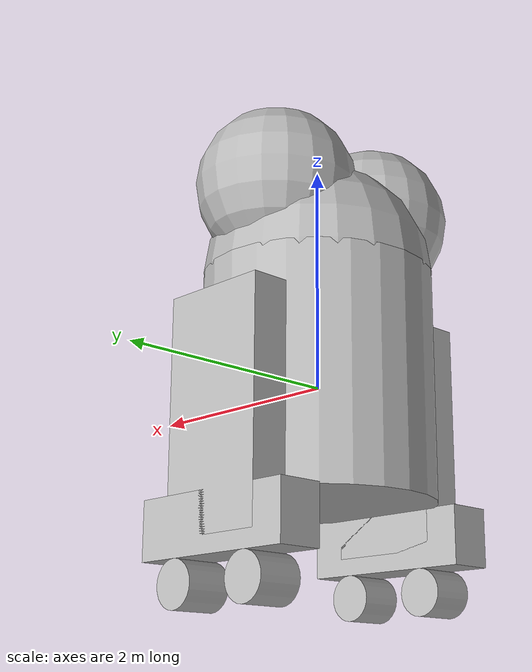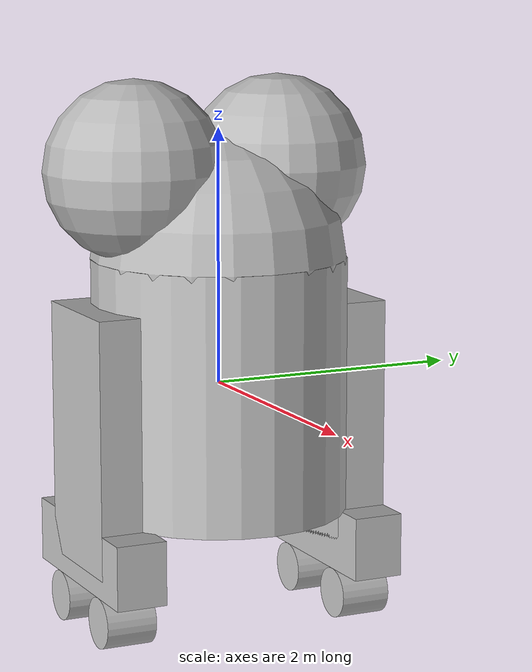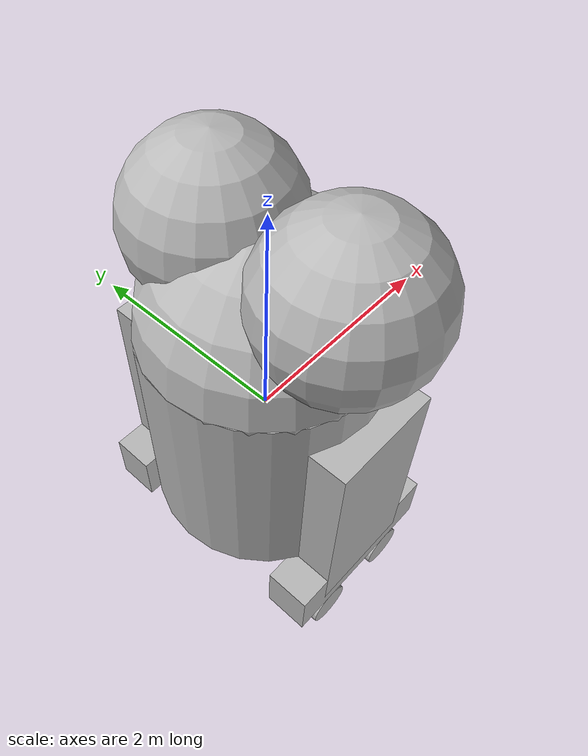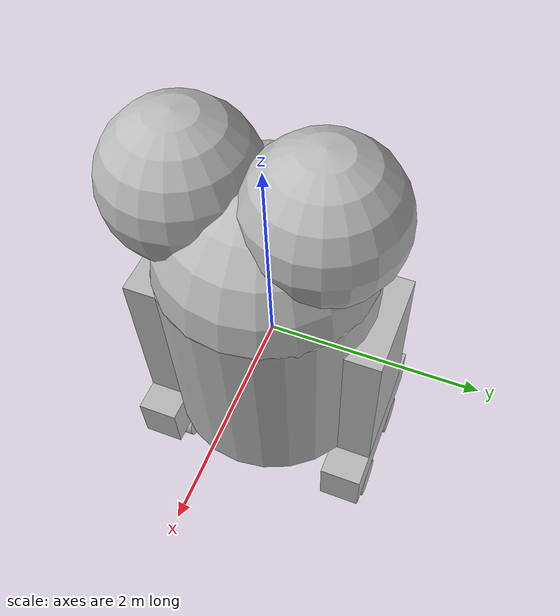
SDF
<sdf version='1.4'>
  <model name='mickeymouse'>
    <link name='base_link'>
      <pose>0 0 0 0 -0 0</pose>
      <inertial>
        <pose>0 0 -0.64 0 -0 0</pose>
        <mass>50</mass>
        <inertia>
          <ixx>78.624</ixx>
          <ixy>0</ixy>
          <ixz>0</ixz>
          <iyy>38.624</iyy>
          <iyz>20.4</iyz>
          <izz>45</izz>
        </inertia>
      </inertial>
      <collision name='base_link_collision'>
        <pose>0 0 0 0 -0 0</pose>
        <geometry>
          <cylinder>
            <length>2</length>
            <radius>1</radius>
          </cylinder>
        </geometry>
      </collision>
      <collision name='base_link_collision_left_base'>
        <pose>0 1 -1.26 0 -0 0</pose>
        <geometry>
          <box>
            <size>1.6 0.4 0.5</size>
          </box>
        </geometry>
      </collision>
      <collision name='base_link_collision_left_leg'>
        <pose>0 1 -1.36 0 -0 0</pose>
        <geometry>
          <box>
            <size>2 0.4 1</size>
          </box>
        </geometry>
      </collision>
      <collision name='base_link_collision_right_base'>
        <pose>0 -1 -1.24 0 -0 0</pose>
        <geometry>
          <box>
            <size>1.6 0.4 0.5</size>
          </box>
        </geometry>
      </collision>
      <collision name='base_link_collision_right_leg'>
        <pose>0 -1 -0.34 0 1.57075 0</pose>
        <geometry>
          <box>
            <size>2 0.4 1</size>
          </box>
        </geometry>
      </collision>
      <visual name='base_link_visual'>
        <pose>0 0 0 0 -0 0</pose>
        <geometry>
          <cylinder>
            <length>2</length>
            <radius>1</radius>
          </cylinder>
        </geometry>
      </visual>
      <visual name='base_link_visual_left_base'>
        <pose>0 1 -1.26 0 -0 0</pose>
        <geometry>
          <box>
            <size>1.6 0.4 0.5</size>
          </box>
        </geometry>
      </visual>
      <visual name='base_link_visual_left_leg'>
        <pose>0 1 -0.36 0 1.57075 0</pose>
        <geometry>
          <box>
            <size>2 0.4 1</size>
          </box>
        </geometry>
      </visual>
      <visual name='base_link_visual_right_base'>
        <pose>0 -1 -1.24 0 -0 0</pose>
        <geometry>
          <box>
            <size>1.6 0.4 0.5</size>
          </box>
        </geometry>
      </visual>
      <visual name='base_link_visual_right_leg'>
        <pose>0 -1 -0.34 0 1.57075 0</pose>
        <geometry>
          <box>
            <size>2 0.4 1</size>
          </box>
        </geometry>
      </visual>
      <velocity_decay>
        <linear>0</linear>
        <angular>0</angular>
      </velocity_decay>
    </link>
    <link name='head_link'>
      <pose>0 0 0 0 -0 0</pose>
      <inertial>
        <pose>0 0 0 0 -0 0</pose>
        <mass>4</mass>
        <inertia>
          <ixx>3</ixx>
          <ixy>0</ixy>
          <ixz>0</ixz>
          <iyy>3</iyy>
          <iyz>0</iyz>
          <izz>3</izz>
        </inertia>
      </inertial>
      <collision name='head_link_collision'>
        <pose>0 0 0 0 -0 0</pose>
        <geometry>
          <sphere>
            <radius>1</radius>
          </sphere>
        </geometry>
      </collision>
      <collision name='head_link_collision_left_ear_link'>
        <pose>0 0 0 0 -0 0</pose>
        <geometry>
          <sphere>
            <radius>0.7</radius>
          </sphere>
        </geometry>
      </collision>
      <collision name='head_link_collision_right_ear_link'>
        <pose>0 0 0 0 -0 0</pose>
        <geometry>
          <sphere>
            <radius>0.7</radius>
          </sphere>
        </geometry>
      </collision>
      <visual name='head_link_visual'>
        <pose>0 0 1 0 -0 0</pose>
        <geometry>
          <sphere>
            <radius>1</radius>
          </sphere>
        </geometry>
      </visual>
      <visual name='head_link_visual_left_ear_link'>
        <pose>0 -0.7 1.7 0 -0 0</pose>
        <geometry>
          <sphere>
            <radius>0.7</radius>
          </sphere>
        </geometry>
      </visual>
      <visual name='head_link_visual_right_ear_link'>
        <pose>0 0.5 1.7 0 -0 0</pose>
        <geometry>
          <sphere>
            <radius>0.7</radius>
          </sphere>
        </geometry>
      </visual>
      <velocity_decay>
        <linear>0</linear>
        <angular>0</angular>
      </velocity_decay>
    </link>
    <joint name='base_link_to_head_link' type='revolute'>
      <child>head_link</child>
      <parent>base_link</parent>
      <axis>
        <xyz>0 0 1</xyz>
        <limit>
          <lower>-1e+16</lower>
          <upper>1e+16</upper>
        </limit>
        <dynamics/>
      </axis>
    </joint>
    <link name='left_back_wheel'>
      <pose>0.4 1 -1.71 0 -0 0</pose>
      <inertial>
        <pose>0 0 0 0 -0 0</pose>
        <mass>1</mass>
        <inertia>
          <ixx>1</ixx>
          <ixy>0</ixy>
          <ixz>0</ixz>
          <iyy>1</iyy>
          <iyz>0</iyz>
          <izz>1</izz>
        </inertia>
      </inertial>
      <collision name='left_back_wheel_collision'>
        <pose>0 0 0 0 -0 0</pose>
        <geometry>
          <cylinder>
            <length>0.4</length>
            <radius>0.2</radius>
          </cylinder>
        </geometry>
      </collision>
      <visual name='left_back_wheel_visual'>
        <pose>0 0 0 -1.57075 0 0</pose>
        <geometry>
          <cylinder>
            <length>0.4</length>
            <radius>0.2</radius>
          </cylinder>
        </geometry>
      </visual>
      <velocity_decay>
        <linear>0</linear>
        <angular>0</angular>
      </velocity_decay>
    </link>
    <joint name='left_back_wheel_joint' type='revolute'>
      <child>left_back_wheel</child>
      <parent>base_link</parent>
      <axis>
        <xyz>0 1 0</xyz>
        <limit>
          <lower>-1e+16</lower>
          <upper>1e+16</upper>
        </limit>
        <dynamics/>
      </axis>
    </joint>
    <link name='left_front_wheel'>
      <pose>-0.4 1 -1.71 0 -0 0</pose>
      <inertial>
        <pose>0 0 0 0 -0 0</pose>
        <mass>1</mass>
        <inertia>
          <ixx>1</ixx>
          <ixy>0</ixy>
          <ixz>0</ixz>
          <iyy>1</iyy>
          <iyz>0</iyz>
          <izz>1</izz>
        </inertia>
      </inertial>
      <collision name='left_front_wheel_collision'>
        <pose>0 0 0 0 -0 0</pose>
        <geometry>
          <cylinder>
            <length>0.4</length>
            <radius>0.2</radius>
          </cylinder>
        </geometry>
      </collision>
      <visual name='left_front_wheel_visual'>
        <pose>0 0 0 -1.57075 0 0</pose>
        <geometry>
          <cylinder>
            <length>0.4</length>
            <radius>0.2</radius>
          </cylinder>
        </geometry>
      </visual>
      <velocity_decay>
        <linear>0</linear>
        <angular>0</angular>
      </velocity_decay>
    </link>
    <joint name='left_front_wheel_joint' type='revolute'>
      <child>left_front_wheel</child>
      <parent>base_link</parent>
      <axis>
        <xyz>0 1 0</xyz>
        <limit>
          <lower>-1e+16</lower>
          <upper>1e+16</upper>
        </limit>
        <dynamics/>
      </axis>
    </joint>
    <link name='right_back_wheel'>
      <pose>-0.4 -1 -1.69 0 -0 0</pose>
      <inertial>
        <pose>0 0 0 0 -0 0</pose>
        <mass>1</mass>
        <inertia>
          <ixx>1</ixx>
          <ixy>0</ixy>
          <ixz>0</ixz>
          <iyy>1</iyy>
          <iyz>0</iyz>
          <izz>1</izz>
        </inertia>
      </inertial>
      <collision name='right_back_wheel_collision'>
        <pose>0 0 0 0 -0 0</pose>
        <geometry>
          <cylinder>
            <length>0.4</length>
            <radius>0.2</radius>
          </cylinder>
        </geometry>
      </collision>
      <visual name='right_back_wheel_visual'>
        <pose>0 0 0 1.57075 -0 0</pose>
        <geometry>
          <cylinder>
            <length>0.4</length>
            <radius>0.2</radius>
          </cylinder>
        </geometry>
      </visual>
      <velocity_decay>
        <linear>0</linear>
        <angular>0</angular>
      </velocity_decay>
    </link>
    <joint name='right_back_wheel_joint' type='revolute'>
      <child>right_back_wheel</child>
      <parent>base_link</parent>
      <axis>
        <xyz>0 1 0</xyz>
        <limit>
          <lower>-1e+16</lower>
          <upper>1e+16</upper>
        </limit>
        <dynamics/>
      </axis>
    </joint>
    <link name='right_front_wheel'>
      <pose>0.4 -1 -1.69 0 -0 0</pose>
      <inertial>
        <pose>0 0 0 0 -0 0</pose>
        <mass>1</mass>
        <inertia>
          <ixx>1</ixx>
          <ixy>0</ixy>
          <ixz>0</ixz>
          <iyy>1</iyy>
          <iyz>0</iyz>
          <izz>1</izz>
        </inertia>
      </inertial>
      <collision name='right_front_wheel_collision'>
        <pose>0 0 0 0 -0 0</pose>
        <geometry>
          <box>
            <size>1.6 0.4 0.5</size>
          </box>
        </geometry>
      </collision>
      <visual name='right_front_wheel_visual'>
        <pose>0 0 0 1.57075 -0 0</pose>
        <geometry>
          <cylinder>
            <length>0.4</length>
            <radius>0.2</radius>
          </cylinder>
        </geometry>
      </visual>
      <velocity_decay>
        <linear>0</linear>
        <angular>0</angular>
      </velocity_decay>
    </link>
    <joint name='right_front_wheel_joint' type='revolute'>
      <child>right_front_wheel</child>
      <parent>base_link</parent>
      <axis>
        <xyz>0 1 0</xyz>
        <limit>
          <lower>-1e+16</lower>
          <upper>1e+16</upper>
        </limit>
        <dynamics/>
      </axis>
    </joint>
  </model>
</sdf>
